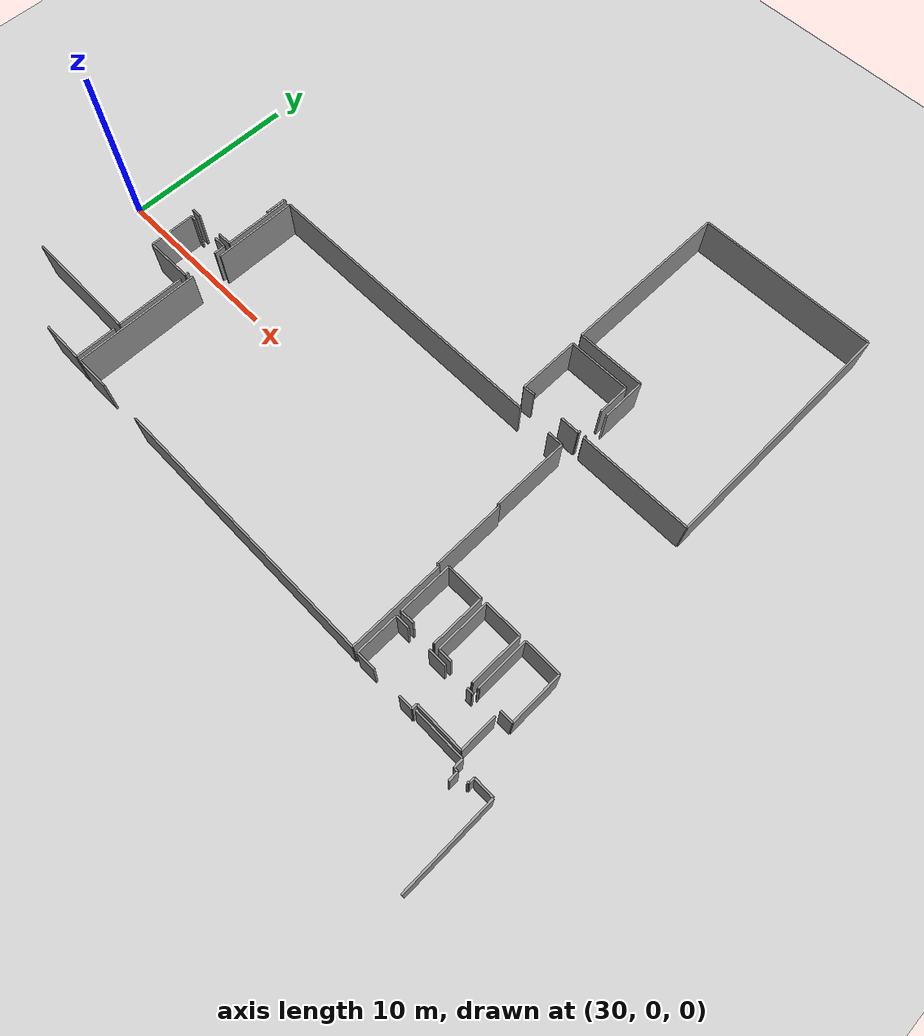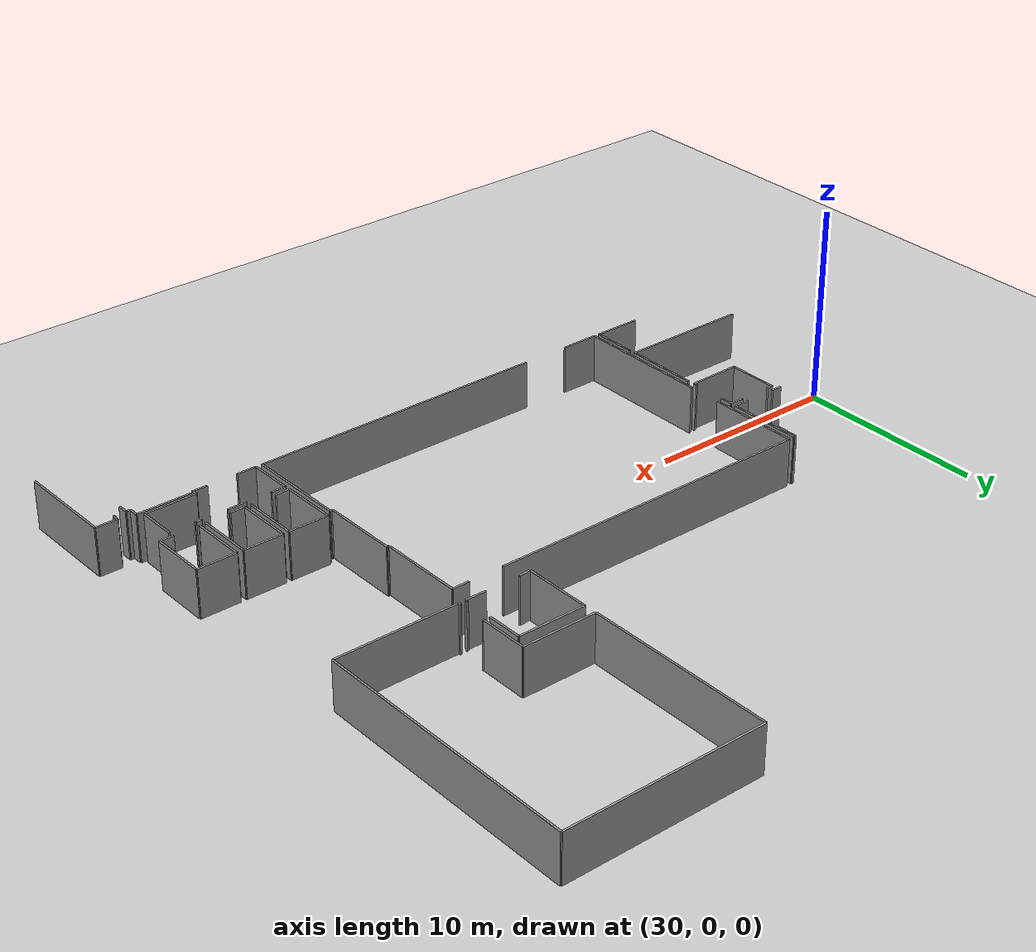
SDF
<sdf version="1.6">
 <world name="default">
  <model name="ground_plane">
   <static>1</static>
   <link name="link">
    <collision name="collision">
     <geometry><plane><normal>0 0 1</normal><size>100 100</size></plane></geometry>
     <surface><friction><ode><mu>100</mu><mu2>50</mu2></ode></friction></surface>
    </collision>
    <visual name="visual">
     <cast_shadows>0</cast_shadows>
     <geometry><plane><normal>0 0 1</normal><size>100 100</size></plane></geometry>
     <material>
      <script><uri>file://media/materials/scripts/gazebo.material</uri><name>Gazebo/Grey</name></script>
     </material>
    </visual>
   </link>
  </model>
  <model name="0510032194_A_40_1_202">
   <static>1</static>
   <link name="Wall_258">
    <collision name="Wall_258_Collision">
     <geometry><box><size>3.87219692495 0.1 2.5</size></box></geometry>
     <pose>1.93609846248 0 1.25 0 0 0</pose>
    </collision>
    <visual name="Wall_258_Visual">
     <pose>1.93609846248 0 1.25 0 0 0</pose>
     <geometry><box><size>3.87219692495 0.1 2.5</size></box></geometry>
     <material>
      <script><uri>file://media/materials/scripts/gazebo.material</uri><name>Gazebo/Grey</name></script>
      <ambient>1 1 1 1</ambient>
     </material>
    </visual>
    <pose>97.7721467538 -25.3383377471 0 0 0 -1.57079632679</pose>
   </link>
   <link name="Wall_259">
    <collision name="Wall_259_Collision">
     <geometry><box><size>6.64786836105 0.1 2.5</size></box></geometry>
     <pose>3.32393418053 0 1.25 0 0 0</pose>
    </collision>
    <visual name="Wall_259_Visual">
     <pose>3.32393418053 0 1.25 0 0 0</pose>
     <geometry><box><size>6.64786836105 0.1 2.5</size></box></geometry>
     <material>
      <script><uri>file://media/materials/scripts/gazebo.material</uri><name>Gazebo/Grey</name></script>
      <ambient>1 1 1 1</ambient>
     </material>
    </visual>
    <pose>97.7721467538 -29.2105346721 0 0 0 3.14159265359</pose>
   </link>
   <link name="Wall_265">
    <collision name="Wall_265_Collision">
     <geometry><box><size>2.30380856212 0.1 2.5</size></box></geometry>
     <pose>1.15190428106 0 1.25 0 0 0</pose>
    </collision>
    <visual name="Wall_265_Visual">
     <pose>1.15190428106 0 1.25 0 0 0</pose>
     <geometry><box><size>2.30380856212 0.1 2.5</size></box></geometry>
     <material>
      <script><uri>file://media/materials/scripts/gazebo.material</uri><name>Gazebo/Grey</name></script>
      <ambient>1 1 1 1</ambient>
     </material>
    </visual>
    <pose>97.7971688228 -29.5391239736 0 0 0 -1.57079632679</pose>
   </link>
   <link name="Wall_266">
    <collision name="Wall_266_Collision">
     <geometry><box><size>2.41355002191 0.1 2.5</size></box></geometry>
     <pose>1.20677501096 0 1.25 0 0 0</pose>
    </collision>
    <visual name="Wall_266_Visual">
     <pose>1.20677501096 0 1.25 0 0 0</pose>
     <geometry><box><size>2.41355002191 0.1 2.5</size></box></geometry>
     <material>
      <script><uri>file://media/materials/scripts/gazebo.material</uri><name>Gazebo/Grey</name></script>
      <ambient>1 1 1 1</ambient>
     </material>
    </visual>
    <pose>97.7971688228 -31.8429325357 0 0 0 3.14159265359</pose>
   </link>
   <link name="Wall_268">
    <collision name="Wall_268_Collision">
     <geometry><box><size>7.07756206299 0.1 2.5</size></box></geometry>
     <pose>3.53878103149 0 1.25 0 0 0</pose>
    </collision>
    <visual name="Wall_268_Visual">
     <pose>3.53878103149 0 1.25 0 0 0</pose>
     <geometry><box><size>7.07756206299 0.1 2.5</size></box></geometry>
     <material>
      <script><uri>file://media/materials/scripts/gazebo.material</uri><name>Gazebo/Grey</name></script>
      <ambient>1 1 1 1</ambient>
     </material>
    </visual>
    <pose>98.0842240301 -31.8544909533 0 0 0 1.57079632679</pose>
   </link>
   <link name="Wall_269">
    <collision name="Wall_269_Collision">
     <geometry><box><size>4.74720724497 0.1 2.5</size></box></geometry>
     <pose>2.37360362248 0 1.25 0 0 0</pose>
    </collision>
    <visual name="Wall_269_Visual">
     <pose>2.37360362248 0 1.25 0 0 0</pose>
     <geometry><box><size>4.74720724497 0.1 2.5</size></box></geometry>
     <material>
      <script><uri>file://media/materials/scripts/gazebo.material</uri><name>Gazebo/Grey</name></script>
      <ambient>1 1 1 1</ambient>
     </material>
    </visual>
    <pose>98.0842240301 -22.9910898572 0 0 0 1.57079632679</pose>
   </link>
   <link name="Wall_270">
    <collision name="Wall_270_Collision">
     <geometry><box><size>17.0306298067 0.1 2.5</size></box></geometry>
     <pose>8.51531490337 0 1.25 0 0 0</pose>
    </collision>
    <visual name="Wall_270_Visual">
     <pose>8.51531490337 0 1.25 0 0 0</pose>
     <geometry><box><size>17.0306298067 0.1 2.5</size></box></geometry>
     <material>
      <script><uri>file://media/materials/scripts/gazebo.material</uri><name>Gazebo/Grey</name></script>
      <ambient>1 1 1 1</ambient>
     </material>
    </visual>
    <pose>98.0842240301 -18.2438826122 0 0 0 0.0</pose>
   </link>
   <link name="Wall_271">
    <collision name="Wall_271_Collision">
     <geometry><box><size>0.876407491379 0.1 2.5</size></box></geometry>
     <pose>0.438203745689 0 1.25 0 0 0</pose>
    </collision>
    <visual name="Wall_271_Visual">
     <pose>0.438203745689 0 1.25 0 0 0</pose>
     <geometry><box><size>0.876407491379 0.1 2.5</size></box></geometry>
     <material>
      <script><uri>file://media/materials/scripts/gazebo.material</uri><name>Gazebo/Grey</name></script>
      <ambient>1 1 1 1</ambient>
     </material>
    </visual>
    <pose>116.938797544 -18.2438826122 0 0 0 0.0</pose>
   </link>
   <link name="Wall_272">
    <collision name="Wall_272_Collision">
     <geometry><box><size>4.35815852814 0.1 2.5</size></box></geometry>
     <pose>2.17907926407 0 1.25 0 0 0</pose>
    </collision>
    <visual name="Wall_272_Visual">
     <pose>2.17907926407 0 1.25 0 0 0</pose>
     <geometry><box><size>4.35815852814 0.1 2.5</size></box></geometry>
     <material>
      <script><uri>file://media/materials/scripts/gazebo.material</uri><name>Gazebo/Grey</name></script>
      <ambient>1 1 1 1</ambient>
     </material>
    </visual>
    <pose>117.815205035 -18.2438826122 0 0 0 -1.57079632679</pose>
   </link>
   <link name="Wall_273">
    <collision name="Wall_273_Collision">
     <geometry><box><size>0.111773709045 0.1 2.5</size></box></geometry>
     <pose>0.0558868545227 0 1.25 0 0 0</pose>
    </collision>
    <visual name="Wall_273_Visual">
     <pose>0.0558868545227 0 1.25 0 0 0</pose>
     <geometry><box><size>0.111773709045 0.1 2.5</size></box></geometry>
     <material>
      <script><uri>file://media/materials/scripts/gazebo.material</uri><name>Gazebo/Grey</name></script>
      <ambient>1 1 1 1</ambient>
     </material>
    </visual>
    <pose>117.815205035 -22.6020411403 0 0 0 0.0</pose>
   </link>
   <link name="Wall_274">
    <collision name="Wall_274_Collision">
     <geometry><box><size>3.9868919923 0.1 2.5</size></box></geometry>
     <pose>1.99344599615 0 1.25 0 0 0</pose>
    </collision>
    <visual name="Wall_274_Visual">
     <pose>1.99344599615 0 1.25 0 0 0</pose>
     <geometry><box><size>3.9868919923 0.1 2.5</size></box></geometry>
     <material>
      <script><uri>file://media/materials/scripts/gazebo.material</uri><name>Gazebo/Grey</name></script>
      <ambient>1 1 1 1</ambient>
     </material>
    </visual>
    <pose>117.926978744 -22.6020411403 0 0 0 -1.57079632679</pose>
   </link>
   <link name="Wall_275">
    <collision name="Wall_275_Collision">
     <geometry><box><size>0.130826045815 0.1 2.5</size></box></geometry>
     <pose>0.0654130229073 0 1.25 0 0 0</pose>
    </collision>
    <visual name="Wall_275_Visual">
     <pose>0.0654130229073 0 1.25 0 0 0</pose>
     <geometry><box><size>0.130826045815 0.1 2.5</size></box></geometry>
     <material>
      <script><uri>file://media/materials/scripts/gazebo.material</uri><name>Gazebo/Grey</name></script>
      <ambient>1 1 1 1</ambient>
     </material>
    </visual>
    <pose>117.926978744 -26.5889331326 0 0 0 0.0</pose>
   </link>
   <link name="Wall_276">
    <collision name="Wall_276_Collision">
     <geometry><box><size>5.24688653063 0.1 2.5</size></box></geometry>
     <pose>2.62344326532 0 1.25 0 0 0</pose>
    </collision>
    <visual name="Wall_276_Visual">
     <pose>2.62344326532 0 1.25 0 0 0</pose>
     <geometry><box><size>5.24688653063 0.1 2.5</size></box></geometry>
     <material>
      <script><uri>file://media/materials/scripts/gazebo.material</uri><name>Gazebo/Grey</name></script>
      <ambient>1 1 1 1</ambient>
     </material>
    </visual>
    <pose>118.05780479 -26.5889331326 0 0 0 -1.57079632679</pose>
   </link>
   <link name="Wall_277">
    <collision name="Wall_277_Collision">
     <geometry><box><size>15.5253681864 0.1 2.5</size></box></geometry>
     <pose>7.7626840932 0 1.25 0 0 0</pose>
    </collision>
    <visual name="Wall_277_Visual">
     <pose>7.7626840932 0 1.25 0 0 0</pose>
     <geometry><box><size>15.5253681864 0.1 2.5</size></box></geometry>
     <material>
      <script><uri>file://media/materials/scripts/gazebo.material</uri><name>Gazebo/Grey</name></script>
      <ambient>1 1 1 1</ambient>
     </material>
    </visual>
    <pose>118.05780479 -31.8358196633 0 0 0 3.14159265359</pose>
   </link>
   <link name="Wall_278">
    <collision name="Wall_278_Collision">
     <geometry><box><size>1.98699242061 0.1 2.5</size></box></geometry>
     <pose>0.993496210304 0 1.25 0 0 0</pose>
    </collision>
    <visual name="Wall_278_Visual">
     <pose>0.993496210304 0 1.25 0 0 0</pose>
     <geometry><box><size>1.98699242061 0.1 2.5</size></box></geometry>
     <material>
      <script><uri>file://media/materials/scripts/gazebo.material</uri><name>Gazebo/Grey</name></script>
      <ambient>1 1 1 1</ambient>
     </material>
    </visual>
    <pose>100.071128724 -31.8358196633 0 0 0 -3.13219575573</pose>
   </link>
   <link name="Wall_279">
    <collision name="Wall_279_Collision">
     <geometry><box><size>2.60331129613 0.1 2.5</size></box></geometry>
     <pose>1.30165564807 0 1.25 0 0 0</pose>
    </collision>
    <visual name="Wall_279_Visual">
     <pose>1.30165564807 0 1.25 0 0 0</pose>
     <geometry><box><size>2.60331129613 0.1 2.5</size></box></geometry>
     <material>
      <script><uri>file://media/materials/scripts/gazebo.material</uri><name>Gazebo/Grey</name></script>
      <ambient>1 1 1 1</ambient>
     </material>
    </visual>
    <pose>95.0378823963 -25.0431535428 0 0 0 1.57079632679</pose>
   </link>
   <link name="Wall_280">
    <collision name="Wall_280_Collision">
     <geometry><box><size>0.300645874216 0.1 2.5</size></box></geometry>
     <pose>0.150322937108 0 1.25 0 0 0</pose>
    </collision>
    <visual name="Wall_280_Visual">
     <pose>0.150322937108 0 1.25 0 0 0</pose>
     <geometry><box><size>0.300645874216 0.1 2.5</size></box></geometry>
     <material>
      <script><uri>file://media/materials/scripts/gazebo.material</uri><name>Gazebo/Grey</name></script>
      <ambient>1 1 1 1</ambient>
     </material>
    </visual>
    <pose>95.0378823963 -22.4398422467 0 0 0 0.0</pose>
   </link>
   <link name="Wall_281">
    <collision name="Wall_281_Collision">
     <geometry><box><size>0.739992760112 0.1 2.5</size></box></geometry>
     <pose>0.369996380056 0 1.25 0 0 0</pose>
    </collision>
    <visual name="Wall_281_Visual">
     <pose>0.369996380056 0 1.25 0 0 0</pose>
     <geometry><box><size>0.739992760112 0.1 2.5</size></box></geometry>
     <material>
      <script><uri>file://media/materials/scripts/gazebo.material</uri><name>Gazebo/Grey</name></script>
      <ambient>1 1 1 1</ambient>
     </material>
    </visual>
    <pose>97.001924286 -22.4398422467 0 0 0 0.0</pose>
   </link>
   <link name="Wall_282">
    <collision name="Wall_282_Collision">
     <geometry><box><size>0.633934752097 0.1 2.5</size></box></geometry>
     <pose>0.316967376049 0 1.25 0 0 0</pose>
    </collision>
    <visual name="Wall_282_Visual">
     <pose>0.316967376049 0 1.25 0 0 0</pose>
     <geometry><box><size>0.633934752097 0.1 2.5</size></box></geometry>
     <material>
      <script><uri>file://media/materials/scripts/gazebo.material</uri><name>Gazebo/Grey</name></script>
      <ambient>1 1 1 1</ambient>
     </material>
    </visual>
    <pose>97.7419170461 -22.4398422467 0 0 0 -1.57079632679</pose>
   </link>
   <link name="Wall_283">
    <collision name="Wall_283_Collision">
     <geometry><box><size>0.203224925537 0.1 2.5</size></box></geometry>
     <pose>0.101612462769 0 1.25 0 0 0</pose>
    </collision>
    <visual name="Wall_283_Visual">
     <pose>0.101612462769 0 1.25 0 0 0</pose>
     <geometry><box><size>0.203224925537 0.1 2.5</size></box></geometry>
     <material>
      <script><uri>file://media/materials/scripts/gazebo.material</uri><name>Gazebo/Grey</name></script>
      <ambient>1 1 1 1</ambient>
     </material>
    </visual>
    <pose>97.7419170461 -24.802332006 0 0 0 -1.57079632679</pose>
   </link>
   <link name="Wall_284">
    <collision name="Wall_284_Collision">
     <geometry><box><size>2.70429600687 0.1 2.5</size></box></geometry>
     <pose>1.35214800343 0 1.25 0 0 0</pose>
    </collision>
    <visual name="Wall_284_Visual">
     <pose>1.35214800343 0 1.25 0 0 0</pose>
     <geometry><box><size>2.70429600687 0.1 2.5</size></box></geometry>
     <material>
      <script><uri>file://media/materials/scripts/gazebo.material</uri><name>Gazebo/Grey</name></script>
      <ambient>1 1 1 1</ambient>
     </material>
    </visual>
    <pose>97.7419170461 -25.0055569316 0 0 0 -3.12768965542</pose>
   </link>
   <link name="Wall_289">
    <collision name="Wall_289_Collision">
     <geometry><box><size>1.17756142791 0.1 2.5</size></box></geometry>
     <pose>0.588780713955 0 1.25 0 0 0</pose>
    </collision>
    <visual name="Wall_289_Visual">
     <pose>0.588780713955 0 1.25 0 0 0</pose>
     <geometry><box><size>1.17756142791 0.1 2.5</size></box></geometry>
     <material>
      <script><uri>file://media/materials/scripts/gazebo.material</uri><name>Gazebo/Grey</name></script>
      <ambient>1 1 1 1</ambient>
     </material>
    </visual>
    <pose>97.6405586145 -19.4401153301 0 0 0 1.57079632679</pose>
   </link>
   <link name="Wall_290">
    <collision name="Wall_290_Collision">
     <geometry><box><size>0.124856313627 0.1 2.5</size></box></geometry>
     <pose>0.0624281568134 0 1.25 0 0 0</pose>
    </collision>
    <visual name="Wall_290_Visual">
     <pose>0.0624281568134 0 1.25 0 0 0</pose>
     <geometry><box><size>0.124856313627 0.1 2.5</size></box></geometry>
     <material>
      <script><uri>file://media/materials/scripts/gazebo.material</uri><name>Gazebo/Grey</name></script>
      <ambient>1 1 1 1</ambient>
     </material>
    </visual>
    <pose>97.6405586145 -18.2625539022 0 0 0 0.0</pose>
   </link>
   <link name="Wall_291">
    <collision name="Wall_291_Collision">
     <geometry><box><size>3.87245095611 0.1 2.5</size></box></geometry>
     <pose>1.93622547805 0 1.25 0 0 0</pose>
    </collision>
    <visual name="Wall_291_Visual">
     <pose>1.93622547805 0 1.25 0 0 0</pose>
     <geometry><box><size>3.87245095611 0.1 2.5</size></box></geometry>
     <material>
      <script><uri>file://media/materials/scripts/gazebo.material</uri><name>Gazebo/Grey</name></script>
      <ambient>1 1 1 1</ambient>
     </material>
    </visual>
    <pose>97.7654149281 -18.2625539022 0 0 0 -1.57079632679</pose>
   </link>
   <link name="Wall_292">
    <collision name="Wall_292_Collision">
     <geometry><box><size>0.818742418758 0.1 2.5</size></box></geometry>
     <pose>0.409371209379 0 1.25 0 0 0</pose>
    </collision>
    <visual name="Wall_292_Visual">
     <pose>0.409371209379 0 1.25 0 0 0</pose>
     <geometry><box><size>0.818742418758 0.1 2.5</size></box></geometry>
     <material>
      <script><uri>file://media/materials/scripts/gazebo.material</uri><name>Gazebo/Grey</name></script>
      <ambient>1 1 1 1</ambient>
     </material>
    </visual>
    <pose>97.7654149281 -22.1350048583 0 0 0 3.14159265359</pose>
   </link>
   <link name="Wall_293">
    <collision name="Wall_293_Collision">
     <geometry><box><size>0.541213379821 0.1 2.5</size></box></geometry>
     <pose>0.270606689911 0 1.25 0 0 0</pose>
    </collision>
    <visual name="Wall_293_Visual">
     <pose>0.270606689911 0 1.25 0 0 0</pose>
     <geometry><box><size>0.541213379821 0.1 2.5</size></box></geometry>
     <material>
      <script><uri>file://media/materials/scripts/gazebo.material</uri><name>Gazebo/Grey</name></script>
      <ambient>1 1 1 1</ambient>
     </material>
    </visual>
    <pose>95.3119820146 -22.1350048583 0 0 0 3.14159265359</pose>
   </link>
   <link name="Wall_298">
    <collision name="Wall_298_Collision">
     <geometry><box><size>2.48226544986 0.1 2.5</size></box></geometry>
     <pose>1.24113272493 0 1.25 0 0 0</pose>
    </collision>
    <visual name="Wall_298_Visual">
     <pose>1.24113272493 0 1.25 0 0 0</pose>
     <geometry><box><size>2.48226544986 0.1 2.5</size></box></geometry>
     <material>
      <script><uri>file://media/materials/scripts/gazebo.material</uri><name>Gazebo/Grey</name></script>
      <ambient>1 1 1 1</ambient>
     </material>
    </visual>
    <pose>118.264840183 -15.5937025676 0 0 0 1.57079632679</pose>
   </link>
   <link name="Wall_299">
    <collision name="Wall_299_Collision">
     <geometry><box><size>3.86762436413 0.1 2.5</size></box></geometry>
     <pose>1.93381218206 0 1.25 0 0 0</pose>
    </collision>
    <visual name="Wall_299_Visual">
     <pose>1.93381218206 0 1.25 0 0 0</pose>
     <geometry><box><size>3.86762436413 0.1 2.5</size></box></geometry>
     <material>
      <script><uri>file://media/materials/scripts/gazebo.material</uri><name>Gazebo/Grey</name></script>
      <ambient>1 1 1 1</ambient>
     </material>
    </visual>
    <pose>118.264840183 -13.1114371178 0 0 0 3.14159265359</pose>
   </link>
   <link name="Wall_300">
    <collision name="Wall_300_Collision">
     <geometry><box><size>9.85412260814 0.1 2.5</size></box></geometry>
     <pose>4.92706130407 0 1.25 0 0 0</pose>
    </collision>
    <visual name="Wall_300_Visual">
     <pose>4.92706130407 0 1.25 0 0 0</pose>
     <geometry><box><size>9.85412260814 0.1 2.5</size></box></geometry>
     <material>
      <script><uri>file://media/materials/scripts/gazebo.material</uri><name>Gazebo/Grey</name></script>
      <ambient>1 1 1 1</ambient>
     </material>
    </visual>
    <pose>114.397215819 -13.1114371178 0 0 0 1.57079632679</pose>
   </link>
   <link name="Wall_301">
    <collision name="Wall_301_Collision">
     <geometry><box><size>10.2603184281 0.1 2.5</size></box></geometry>
     <pose>5.13015921403 0 1.25 0 0 0</pose>
    </collision>
    <visual name="Wall_301_Visual">
     <pose>5.13015921403 0 1.25 0 0 0</pose>
     <geometry><box><size>10.2603184281 0.1 2.5</size></box></geometry>
     <material>
      <script><uri>file://media/materials/scripts/gazebo.material</uri><name>Gazebo/Grey</name></script>
      <ambient>1 1 1 1</ambient>
     </material>
    </visual>
    <pose>114.397215819 -3.25731450962 0 0 0 0.0</pose>
   </link>
   <link name="Wall_302">
    <collision name="Wall_302_Collision">
     <geometry><box><size>13.9776833629 0.1 2.5</size></box></geometry>
     <pose>6.98884168143 0 1.25 0 0 0</pose>
    </collision>
    <visual name="Wall_302_Visual">
     <pose>6.98884168143 0 1.25 0 0 0</pose>
     <geometry><box><size>13.9776833629 0.1 2.5</size></box></geometry>
     <material>
      <script><uri>file://media/materials/scripts/gazebo.material</uri><name>Gazebo/Grey</name></script>
      <ambient>1 1 1 1</ambient>
     </material>
    </visual>
    <pose>124.657534247 -3.25731450962 0 0 0 -1.57079632679</pose>
   </link>
   <link name="Wall_303">
    <collision name="Wall_303_Collision">
     <geometry><box><size>6.35839985774 0.1 2.5</size></box></geometry>
     <pose>3.17919992887 0 1.25 0 0 0</pose>
    </collision>
    <visual name="Wall_303_Visual">
     <pose>3.17919992887 0 1.25 0 0 0</pose>
     <geometry><box><size>6.35839985774 0.1 2.5</size></box></geometry>
     <material>
      <script><uri>file://media/materials/scripts/gazebo.material</uri><name>Gazebo/Grey</name></script>
      <ambient>1 1 1 1</ambient>
     </material>
    </visual>
    <pose>124.657534247 -17.2349978725 0 0 0 3.14159265359</pose>
   </link>
   <link name="Wall_304">
    <collision name="Wall_304_Collision">
     <geometry><box><size>0.144162681553 0.1 2.5</size></box></geometry>
     <pose>0.0720813407764 0 1.25 0 0 0</pose>
    </collision>
    <visual name="Wall_304_Visual">
     <pose>0.0720813407764 0 1.25 0 0 0</pose>
     <geometry><box><size>0.144162681553 0.1 2.5</size></box></geometry>
     <material>
      <script><uri>file://media/materials/scripts/gazebo.material</uri><name>Gazebo/Grey</name></script>
      <ambient>1 1 1 1</ambient>
     </material>
    </visual>
    <pose>118.299134389 -17.2349978725 0 0 0 1.57079632679</pose>
   </link>
   <link name="Wall_305">
    <collision name="Wall_305_Collision">
     <geometry><box><size>0.0737452054764 0.1 2.5</size></box></geometry>
     <pose>0.0368726027382 0 1.25 0 0 0</pose>
    </collision>
    <visual name="Wall_305_Visual">
     <pose>0.0368726027382 0 1.25 0 0 0</pose>
     <geometry><box><size>0.0737452054764 0.1 2.5</size></box></geometry>
     <material>
      <script><uri>file://media/materials/scripts/gazebo.material</uri><name>Gazebo/Grey</name></script>
      <ambient>1 1 1 1</ambient>
     </material>
    </visual>
    <pose>118.299134389 -15.6589885749 0 0 0 2.05447207407</pose>
   </link>
   <link name="Wall_306">
    <collision name="Wall_306_Collision">
     <geometry><box><size>3.49927918659 0.1 2.5</size></box></geometry>
     <pose>1.7496395933 0 1.25 0 0 0</pose>
    </collision>
    <visual name="Wall_306_Visual">
     <pose>1.7496395933 0 1.25 0 0 0</pose>
     <geometry><box><size>3.49927918659 0.1 2.5</size></box></geometry>
     <material>
      <script><uri>file://media/materials/scripts/gazebo.material</uri><name>Gazebo/Grey</name></script>
      <ambient>1 1 1 1</ambient>
     </material>
    </visual>
    <pose>114.420078623 -17.2863121662 0 0 0 1.57079632679</pose>
   </link>
   <link name="Wall_307">
    <collision name="Wall_307_Collision">
     <geometry><box><size>3.5069001213 0.1 2.5</size></box></geometry>
     <pose>1.75345006065 0 1.25 0 0 0</pose>
    </collision>
    <visual name="Wall_307_Visual">
     <pose>1.75345006065 0 1.25 0 0 0</pose>
     <geometry><box><size>3.5069001213 0.1 2.5</size></box></geometry>
     <material>
      <script><uri>file://media/materials/scripts/gazebo.material</uri><name>Gazebo/Grey</name></script>
      <ambient>1 1 1 1</ambient>
     </material>
    </visual>
    <pose>114.420078623 -13.7870329796 0 0 0 0.0</pose>
   </link>
   <link name="Wall_308">
    <collision name="Wall_308_Collision">
     <geometry><box><size>1.82483281574 0.1 2.5</size></box></geometry>
     <pose>0.912416407872 0 1.25 0 0 0</pose>
    </collision>
    <visual name="Wall_308_Visual">
     <pose>0.912416407872 0 1.25 0 0 0</pose>
     <geometry><box><size>1.82483281574 0.1 2.5</size></box></geometry>
     <material>
      <script><uri>file://media/materials/scripts/gazebo.material</uri><name>Gazebo/Grey</name></script>
      <ambient>1 1 1 1</ambient>
     </material>
    </visual>
    <pose>117.926978744 -13.7870329796 0 0 0 -1.57079632679</pose>
   </link>
   <link name="Wall_309">
    <collision name="Wall_309_Collision">
     <geometry><box><size>0.132477248335 0.1 2.5</size></box></geometry>
     <pose>0.0662386241673 0 1.25 0 0 0</pose>
    </collision>
    <visual name="Wall_309_Visual">
     <pose>0.0662386241673 0 1.25 0 0 0</pose>
     <geometry><box><size>0.132477248335 0.1 2.5</size></box></geometry>
     <material>
      <script><uri>file://media/materials/scripts/gazebo.material</uri><name>Gazebo/Grey</name></script>
      <ambient>1 1 1 1</ambient>
     </material>
    </visual>
    <pose>117.926978744 -17.0985831412 0 0 0 -1.57079632679</pose>
   </link>
   <link name="Wall_310">
    <collision name="Wall_310_Collision">
     <geometry><box><size>1.07836226113 0.1 2.5</size></box></geometry>
     <pose>0.539181130566 0 1.25 0 0 0</pose>
    </collision>
    <visual name="Wall_310_Visual">
     <pose>0.539181130566 0 1.25 0 0 0</pose>
     <geometry><box><size>1.07836226113 0.1 2.5</size></box></geometry>
     <material>
      <script><uri>file://media/materials/scripts/gazebo.material</uri><name>Gazebo/Grey</name></script>
      <ambient>1 1 1 1</ambient>
     </material>
    </visual>
    <pose>117.926978744 -17.2310603896 0 0 0 3.14159265359</pose>
   </link>
   <link name="Wall_311">
    <collision name="Wall_311_Collision">
     <geometry><box><size>0.631150173826 0.1 2.5</size></box></geometry>
     <pose>0.315575086913 0 1.25 0 0 0</pose>
    </collision>
    <visual name="Wall_311_Visual">
     <pose>0.315575086913 0 1.25 0 0 0</pose>
     <geometry><box><size>0.631150173826 0.1 2.5</size></box></geometry>
     <material>
      <script><uri>file://media/materials/scripts/gazebo.material</uri><name>Gazebo/Grey</name></script>
      <ambient>1 1 1 1</ambient>
     </material>
    </visual>
    <pose>115.048805736 -17.2310603896 0 0 0 -3.0539390432</pose>
   </link>
   <link name="Wall_312">
    <collision name="Wall_312_Collision">
     <geometry><box><size>2.31663713554 0.1 2.5</size></box></geometry>
     <pose>1.15831856777 0 1.25 0 0 0</pose>
    </collision>
    <visual name="Wall_312_Visual">
     <pose>1.15831856777 0 1.25 0 0 0</pose>
     <geometry><box><size>2.31663713554 0.1 2.5</size></box></geometry>
     <material>
      <script><uri>file://media/materials/scripts/gazebo.material</uri><name>Gazebo/Grey</name></script>
      <ambient>1 1 1 1</ambient>
     </material>
    </visual>
    <pose>118.379154203 -31.8516966106 0 0 0 1.57079632679</pose>
   </link>
   <link name="Wall_313">
    <collision name="Wall_313_Collision">
     <geometry><box><size>0.757012847626 0.1 2.5</size></box></geometry>
     <pose>0.378506423813 0 1.25 0 0 0</pose>
    </collision>
    <visual name="Wall_313_Visual">
     <pose>0.378506423813 0 1.25 0 0 0</pose>
     <geometry><box><size>0.757012847626 0.1 2.5</size></box></geometry>
     <material>
      <script><uri>file://media/materials/scripts/gazebo.material</uri><name>Gazebo/Grey</name></script>
      <ambient>1 1 1 1</ambient>
     </material>
    </visual>
    <pose>118.379154203 -29.535059475 0 0 0 0.0</pose>
   </link>
   <link name="Wall_314">
    <collision name="Wall_314_Collision">
     <geometry><box><size>0.999612602486 0.1 2.5</size></box></geometry>
     <pose>0.499806301243 0 1.25 0 0 0</pose>
    </collision>
    <visual name="Wall_314_Visual">
     <pose>0.499806301243 0 1.25 0 0 0</pose>
     <geometry><box><size>0.999612602486 0.1 2.5</size></box></geometry>
     <material>
      <script><uri>file://media/materials/scripts/gazebo.material</uri><name>Gazebo/Grey</name></script>
      <ambient>1 1 1 1</ambient>
     </material>
    </visual>
    <pose>120.449508132 -29.535059475 0 0 0 0.0</pose>
   </link>
   <link name="Wall_315">
    <collision name="Wall_315_Collision">
     <geometry><box><size>0.35564361969 0.1 2.5</size></box></geometry>
     <pose>0.177821809845 0 1.25 0 0 0</pose>
    </collision>
    <visual name="Wall_315_Visual">
     <pose>0.177821809845 0 1.25 0 0 0</pose>
     <geometry><box><size>0.35564361969 0.1 2.5</size></box></geometry>
     <material>
      <script><uri>file://media/materials/scripts/gazebo.material</uri><name>Gazebo/Grey</name></script>
      <ambient>1 1 1 1</ambient>
     </material>
    </visual>
    <pose>122.784054464 -29.535059475 0 0 0 0.0</pose>
   </link>
   <link name="Wall_316">
    <collision name="Wall_316_Collision">
     <geometry><box><size>0.0635077892304 0.1 2.5</size></box></geometry>
     <pose>0.0317538946152 0 1.25 0 0 0</pose>
    </collision>
    <visual name="Wall_316_Visual">
     <pose>0.0317538946152 0 1.25 0 0 0</pose>
     <geometry><box><size>0.0635077892304 0.1 2.5</size></box></geometry>
     <material>
      <script><uri>file://media/materials/scripts/gazebo.material</uri><name>Gazebo/Grey</name></script>
      <ambient>1 1 1 1</ambient>
     </material>
    </visual>
    <pose>123.139698084 -29.535059475 0 0 0 3.14159265359</pose>
   </link>
   <link name="Wall_317">
    <collision name="Wall_317_Collision">
     <geometry><box><size>2.00697315526 0.1 2.5</size></box></geometry>
     <pose>1.00348657763 0 1.25 0 0 0</pose>
    </collision>
    <visual name="Wall_317_Visual">
     <pose>1.00348657763 0 1.25 0 0 0</pose>
     <geometry><box><size>2.00697315526 0.1 2.5</size></box></geometry>
     <material>
      <script><uri>file://media/materials/scripts/gazebo.material</uri><name>Gazebo/Grey</name></script>
      <ambient>1 1 1 1</ambient>
     </material>
    </visual>
    <pose>124.446688386 -29.535059475 0 0 0 -1.57079632679</pose>
   </link>
   <link name="Wall_318">
    <collision name="Wall_318_Collision">
     <geometry><box><size>2.67494808238 0.1 2.5</size></box></geometry>
     <pose>1.33747404119 0 1.25 0 0 0</pose>
    </collision>
    <visual name="Wall_318_Visual">
     <pose>1.33747404119 0 1.25 0 0 0</pose>
     <geometry><box><size>2.67494808238 0.1 2.5</size></box></geometry>
     <material>
      <script><uri>file://media/materials/scripts/gazebo.material</uri><name>Gazebo/Grey</name></script>
      <ambient>1 1 1 1</ambient>
     </material>
    </visual>
    <pose>124.446688386 -31.5420326303 0 0 0 3.14159265359</pose>
   </link>
   <link name="Wall_319">
    <collision name="Wall_319_Collision">
     <geometry><box><size>0.29048462794 0.1 2.5</size></box></geometry>
     <pose>0.14524231397 0 1.25 0 0 0</pose>
    </collision>
    <visual name="Wall_319_Visual">
     <pose>0.14524231397 0 1.25 0 0 0</pose>
     <geometry><box><size>0.29048462794 0.1 2.5</size></box></geometry>
     <material>
      <script><uri>file://media/materials/scripts/gazebo.material</uri><name>Gazebo/Grey</name></script>
      <ambient>1 1 1 1</ambient>
     </material>
    </visual>
    <pose>121.771740304 -31.5420326303 0 0 0 -1.57079632679</pose>
   </link>
   <link name="Wall_320">
    <collision name="Wall_320_Collision">
     <geometry><box><size>0.770984561256 0.1 2.5</size></box></geometry>
     <pose>0.385492280628 0 1.25 0 0 0</pose>
    </collision>
    <visual name="Wall_320_Visual">
     <pose>0.385492280628 0 1.25 0 0 0</pose>
     <geometry><box><size>0.770984561256 0.1 2.5</size></box></geometry>
     <material>
      <script><uri>file://media/materials/scripts/gazebo.material</uri><name>Gazebo/Grey</name></script>
      <ambient>1 1 1 1</ambient>
     </material>
    </visual>
    <pose>121.771740304 -31.8325172582 0 0 0 3.14159265359</pose>
   </link>
   <link name="Wall_321">
    <collision name="Wall_321_Collision">
     <geometry><box><size>1.04424420081 0.1 2.5</size></box></geometry>
     <pose>0.522122100403 0 1.25 0 0 0</pose>
    </collision>
    <visual name="Wall_321_Visual">
     <pose>0.522122100403 0 1.25 0 0 0</pose>
     <geometry><box><size>1.04424420081 0.1 2.5</size></box></geometry>
     <material>
      <script><uri>file://media/materials/scripts/gazebo.material</uri><name>Gazebo/Grey</name></script>
      <ambient>1 1 1 1</ambient>
     </material>
    </visual>
    <pose>119.423222258 -31.8325172582 0 0 0 -3.12322488979</pose>
   </link>
   <link name="Wall_322">
    <collision name="Wall_322_Collision">
     <geometry><box><size>2.94803157607 0.1 2.5</size></box></geometry>
     <pose>1.47401578804 0 1.25 0 0 0</pose>
    </collision>
    <visual name="Wall_322_Visual">
     <pose>1.47401578804 0 1.25 0 0 0</pose>
     <geometry><box><size>2.94803157607 0.1 2.5</size></box></geometry>
     <material>
      <script><uri>file://media/materials/scripts/gazebo.material</uri><name>Gazebo/Grey</name></script>
      <ambient>1 1 1 1</ambient>
     </material>
    </visual>
    <pose>118.366452645 -29.2552441557 0 0 0 1.57079632679</pose>
   </link>
   <link name="Wall_323">
    <collision name="Wall_323_Collision">
     <geometry><box><size>2.0627329942 0.1 2.5</size></box></geometry>
     <pose>1.0313664971 0 1.25 0 0 0</pose>
    </collision>
    <visual name="Wall_323_Visual">
     <pose>1.0313664971 0 1.25 0 0 0</pose>
     <geometry><box><size>2.0627329942 0.1 2.5</size></box></geometry>
     <material>
      <script><uri>file://media/materials/scripts/gazebo.material</uri><name>Gazebo/Grey</name></script>
      <ambient>1 1 1 1</ambient>
     </material>
    </visual>
    <pose>118.366452645 -26.3072125796 0 0 0 0.0</pose>
   </link>
   <link name="Wall_324">
    <collision name="Wall_324_Collision">
     <geometry><box><size>2.90459224824 0.1 2.5</size></box></geometry>
     <pose>1.45229612412 0 1.25 0 0 0</pose>
    </collision>
    <visual name="Wall_324_Visual">
     <pose>1.45229612412 0 1.25 0 0 0</pose>
     <geometry><box><size>2.90459224824 0.1 2.5</size></box></geometry>
     <material>
      <script><uri>file://media/materials/scripts/gazebo.material</uri><name>Gazebo/Grey</name></script>
      <ambient>1 1 1 1</ambient>
     </material>
    </visual>
    <pose>120.42918564 -26.3072125796 0 0 0 -1.57079632679</pose>
   </link>
   <link name="Wall_325">
    <collision name="Wall_325_Collision">
     <geometry><box><size>0.0533465429535 0.1 2.5</size></box></geometry>
     <pose>0.0266732714767 0 1.25 0 0 0</pose>
    </collision>
    <visual name="Wall_325_Visual">
     <pose>0.0266732714767 0 1.25 0 0 0</pose>
     <geometry><box><size>0.0533465429535 0.1 2.5</size></box></geometry>
     <material>
      <script><uri>file://media/materials/scripts/gazebo.material</uri><name>Gazebo/Grey</name></script>
      <ambient>1 1 1 1</ambient>
     </material>
    </visual>
    <pose>120.42918564 -29.2118048279 0 0 0 3.14159265359</pose>
   </link>
   <link name="Wall_326">
    <collision name="Wall_326_Collision">
     <geometry><box><size>0.762062393652 0.1 2.5</size></box></geometry>
     <pose>0.381031196826 0 1.25 0 0 0</pose>
    </collision>
    <visual name="Wall_326_Visual">
     <pose>0.381031196826 0 1.25 0 0 0</pose>
     <geometry><box><size>0.762062393652 0.1 2.5</size></box></geometry>
     <material>
      <script><uri>file://media/materials/scripts/gazebo.material</uri><name>Gazebo/Grey</name></script>
      <ambient>1 1 1 1</ambient>
     </material>
    </visual>
    <pose>119.12727596 -29.2118048279 0 0 0 -3.08455941461</pose>
   </link>
   <link name="Wall_327">
    <collision name="Wall_327_Collision">
     <geometry><box><size>2.93507598707 0.1 2.5</size></box></geometry>
     <pose>1.46753799353 0 1.25 0 0 0</pose>
    </collision>
    <visual name="Wall_327_Visual">
     <pose>1.46753799353 0 1.25 0 0 0</pose>
     <geometry><box><size>2.93507598707 0.1 2.5</size></box></geometry>
     <material>
      <script><uri>file://media/materials/scripts/gazebo.material</uri><name>Gazebo/Grey</name></script>
      <ambient>1 1 1 1</ambient>
     </material>
    </visual>
    <pose>120.742914118 -29.2307301491 0 0 0 1.57079632679</pose>
   </link>
   <link name="Wall_328">
    <collision name="Wall_328_Collision">
     <geometry><box><size>2.04876128057 0.1 2.5</size></box></geometry>
     <pose>1.02438064029 0 1.25 0 0 0</pose>
    </collision>
    <visual name="Wall_328_Visual">
     <pose>1.02438064029 0 1.25 0 0 0</pose>
     <geometry><box><size>2.04876128057 0.1 2.5</size></box></geometry>
     <material>
      <script><uri>file://media/materials/scripts/gazebo.material</uri><name>Gazebo/Grey</name></script>
      <ambient>1 1 1 1</ambient>
     </material>
    </visual>
    <pose>120.742914118 -26.295654162 0 0 0 0.0</pose>
   </link>
   <link name="Wall_329">
    <collision name="Wall_329_Collision">
     <geometry><box><size>2.93380583129 0.1 2.5</size></box></geometry>
     <pose>1.46690291564 0 1.25 0 0 0</pose>
    </collision>
    <visual name="Wall_329_Visual">
     <pose>1.46690291564 0 1.25 0 0 0</pose>
     <geometry><box><size>2.93380583129 0.1 2.5</size></box></geometry>
     <material>
      <script><uri>file://media/materials/scripts/gazebo.material</uri><name>Gazebo/Grey</name></script>
      <ambient>1 1 1 1</ambient>
     </material>
    </visual>
    <pose>122.791675399 -26.295654162 0 0 0 -1.57079632679</pose>
   </link>
   <link name="Wall_330">
    <collision name="Wall_330_Collision">
     <geometry><box><size>0.0495360755997 0.1 2.5</size></box></geometry>
     <pose>0.0247680377998 0 1.25 0 0 0</pose>
    </collision>
    <visual name="Wall_330_Visual">
     <pose>0.0247680377998 0 1.25 0 0 0</pose>
     <geometry><box><size>0.0495360755997 0.1 2.5</size></box></geometry>
     <material>
      <script><uri>file://media/materials/scripts/gazebo.material</uri><name>Gazebo/Grey</name></script>
      <ambient>1 1 1 1</ambient>
     </material>
    </visual>
    <pose>122.791675399 -29.2294599933 0 0 0 3.14159265359</pose>
   </link>
   <link name="Wall_331">
    <collision name="Wall_331_Collision">
     <geometry><box><size>0.76336468325 0.1 2.5</size></box></geometry>
     <pose>0.381682341625 0 1.25 0 0 0</pose>
    </collision>
    <visual name="Wall_331_Visual">
     <pose>0.381682341625 0 1.25 0 0 0</pose>
     <geometry><box><size>0.76336468325 0.1 2.5</size></box></geometry>
     <material>
      <script><uri>file://media/materials/scripts/gazebo.material</uri><name>Gazebo/Grey</name></script>
      <ambient>1 1 1 1</ambient>
     </material>
    </visual>
    <pose>121.506277745 -29.2294599933 0 0 0 -3.13992876161</pose>
   </link>
   <link name="Wall_332">
    <collision name="Wall_332_Collision">
     <geometry><box><size>2.9378703298 0.1 2.5</size></box></geometry>
     <pose>1.4689351649 0 1.25 0 0 0</pose>
    </collision>
    <visual name="Wall_332_Visual">
     <pose>1.4689351649 0 1.25 0 0 0</pose>
     <geometry><box><size>2.9378703298 0.1 2.5</size></box></geometry>
     <material>
      <script><uri>file://media/materials/scripts/gazebo.material</uri><name>Gazebo/Grey</name></script>
      <ambient>1 1 1 1</ambient>
     </material>
    </visual>
    <pose>123.121915903 -29.2280628219 0 0 0 1.57079632679</pose>
   </link>
   <link name="Wall_333">
    <collision name="Wall_333_Collision">
     <geometry><box><size>2.03478956694 0.1 2.5</size></box></geometry>
     <pose>1.01739478347 0 1.25 0 0 0</pose>
    </collision>
    <visual name="Wall_333_Visual">
     <pose>1.01739478347 0 1.25 0 0 0</pose>
     <geometry><box><size>2.03478956694 0.1 2.5</size></box></geometry>
     <material>
      <script><uri>file://media/materials/scripts/gazebo.material</uri><name>Gazebo/Grey</name></script>
      <ambient>1 1 1 1</ambient>
     </material>
    </visual>
    <pose>123.121915903 -26.2901924921 0 0 0 0.0</pose>
   </link>
   <link name="Wall_334">
    <collision name="Wall_334_Collision">
     <geometry><box><size>2.913102292 0.1 2.5</size></box></geometry>
     <pose>1.456551146 0 1.25 0 0 0</pose>
    </collision>
    <visual name="Wall_334_Visual">
     <pose>1.456551146 0 1.25 0 0 0</pose>
     <geometry><box><size>2.913102292 0.1 2.5</size></box></geometry>
     <material>
      <script><uri>file://media/materials/scripts/gazebo.material</uri><name>Gazebo/Grey</name></script>
      <ambient>1 1 1 1</ambient>
     </material>
    </visual>
    <pose>125.15670547 -26.2901924921 0 0 0 -1.57079632679</pose>
   </link>
   <link name="Wall_335">
    <collision name="Wall_335_Collision">
     <geometry><box><size>0.715097706734 0.1 2.5</size></box></geometry>
     <pose>0.357548853367 0 1.25 0 0 0</pose>
    </collision>
    <visual name="Wall_335_Visual">
     <pose>0.357548853367 0 1.25 0 0 0</pose>
     <geometry><box><size>0.715097706734 0.1 2.5</size></box></geometry>
     <material>
      <script><uri>file://media/materials/scripts/gazebo.material</uri><name>Gazebo/Grey</name></script>
      <ambient>1 1 1 1</ambient>
     </material>
    </visual>
    <pose>125.15670547 -29.2032947841 0 0 0 3.14159265359</pose>
   </link>
   <link name="Wall_336">
    <collision name="Wall_336_Collision">
     <geometry><box><size>0.0813420497655 0.1 2.5</size></box></geometry>
     <pose>0.0406710248827 0 1.25 0 0 0</pose>
    </collision>
    <visual name="Wall_336_Visual">
     <pose>0.0406710248827 0 1.25 0 0 0</pose>
     <geometry><box><size>0.0813420497655 0.1 2.5</size></box></geometry>
     <material>
      <script><uri>file://media/materials/scripts/gazebo.material</uri><name>Gazebo/Grey</name></script>
      <ambient>1 1 1 1</ambient>
     </material>
    </visual>
    <pose>123.199395406 -29.2032947841 0 0 0 -2.83218715104</pose>
   </link>
   <link name="Wall_408">
    <collision name="Wall_408_Collision">
     <geometry><box><size>2.79561288192 0.1 2.5</size></box></geometry>
     <pose>1.39780644096 0 1.25 0 0 0</pose>
    </collision>
    <visual name="Wall_408_Visual">
     <pose>1.39780644096 0 1.25 0 0 0</pose>
     <geometry><box><size>2.79561288192 0.1 2.5</size></box></geometry>
     <material>
      <script><uri>file://media/materials/scripts/gazebo.material</uri><name>Gazebo/Grey</name></script>
      <ambient>1 1 1 1</ambient>
     </material>
    </visual>
    <pose>121.929239621 -31.7315398734 0 0 0 0.0</pose>
   </link>
   <link name="Wall_409">
    <collision name="Wall_409_Collision">
     <geometry><box><size>0.509459485206 0.1 2.5</size></box></geometry>
     <pose>0.254729742603 0 1.25 0 0 0</pose>
    </collision>
    <visual name="Wall_409_Visual">
     <pose>0.254729742603 0 1.25 0 0 0</pose>
     <geometry><box><size>0.509459485206 0.1 2.5</size></box></geometry>
     <material>
      <script><uri>file://media/materials/scripts/gazebo.material</uri><name>Gazebo/Grey</name></script>
      <ambient>1 1 1 1</ambient>
     </material>
    </visual>
    <pose>124.724852503 -31.7315398734 0 0 0 -1.57079632679</pose>
   </link>
   <link name="Wall_410">
    <collision name="Wall_410_Collision">
     <geometry><box><size>0.221007106522 0.1 2.5</size></box></geometry>
     <pose>0.110503553261 0 1.25 0 0 0</pose>
    </collision>
    <visual name="Wall_410_Visual">
     <pose>0.110503553261 0 1.25 0 0 0</pose>
     <geometry><box><size>0.221007106522 0.1 2.5</size></box></geometry>
     <material>
      <script><uri>file://media/materials/scripts/gazebo.material</uri><name>Gazebo/Grey</name></script>
      <ambient>1 1 1 1</ambient>
     </material>
    </visual>
    <pose>124.724852503 -32.2409993586 0 0 0 0.0</pose>
   </link>
   <link name="Wall_411">
    <collision name="Wall_411_Collision">
     <geometry><box><size>0.530163024495 0.1 2.5</size></box></geometry>
     <pose>0.265081512247 0 1.25 0 0 0</pose>
    </collision>
    <visual name="Wall_411_Visual">
     <pose>0.265081512247 0 1.25 0 0 0</pose>
     <geometry><box><size>0.530163024495 0.1 2.5</size></box></geometry>
     <material>
      <script><uri>file://media/materials/scripts/gazebo.material</uri><name>Gazebo/Grey</name></script>
      <ambient>1 1 1 1</ambient>
     </material>
    </visual>
    <pose>124.94585961 -32.2409993586 0 0 0 -1.57079632679</pose>
   </link>
   <link name="Wall_414">
    <collision name="Wall_414_Collision">
     <geometry><box><size>0.0889109049225 0.1 2.5</size></box></geometry>
     <pose>0.0444554524612 0 1.25 0 0 0</pose>
    </collision>
    <visual name="Wall_414_Visual">
     <pose>0.0444554524612 0 1.25 0 0 0</pose>
     <geometry><box><size>0.0889109049225 0.1 2.5</size></box></geometry>
     <material>
      <script><uri>file://media/materials/scripts/gazebo.material</uri><name>Gazebo/Grey</name></script>
      <ambient>1 1 1 1</ambient>
     </material>
    </visual>
    <pose>125.49710722 -32.2299490032 0 0 0 0.0</pose>
   </link>
   <link name="Wall_415">
    <collision name="Wall_415_Collision">
     <geometry><box><size>0.309282933552 0.1 2.5</size></box></geometry>
     <pose>0.154641466776 0 1.25 0 0 0</pose>
    </collision>
    <visual name="Wall_415_Visual">
     <pose>0.154641466776 0 1.25 0 0 0</pose>
     <geometry><box><size>0.309282933552 0.1 2.5</size></box></geometry>
     <material>
      <script><uri>file://media/materials/scripts/gazebo.material</uri><name>Gazebo/Grey</name></script>
      <ambient>1 1 1 1</ambient>
     </material>
    </visual>
    <pose>125.586018125 -32.2299490032 0 0 0 1.57079632679</pose>
   </link>
   <link name="Wall_416">
    <collision name="Wall_416_Collision">
     <geometry><box><size>1.11519677888 0.1 2.5</size></box></geometry>
     <pose>0.557598389442 0 1.25 0 0 0</pose>
    </collision>
    <visual name="Wall_416_Visual">
     <pose>0.557598389442 0 1.25 0 0 0</pose>
     <geometry><box><size>1.11519677888 0.1 2.5</size></box></geometry>
     <material>
      <script><uri>file://media/materials/scripts/gazebo.material</uri><name>Gazebo/Grey</name></script>
      <ambient>1 1 1 1</ambient>
     </material>
    </visual>
    <pose>125.586018125 -31.9206660697 0 0 0 0.0</pose>
   </link>
   <link name="Wall_417">
    <collision name="Wall_417_Collision">
     <geometry><box><size>5.17575780669 0.1 2.5</size></box></geometry>
     <pose>2.58787890335 0 1.25 0 0 0</pose>
    </collision>
    <visual name="Wall_417_Visual">
     <pose>2.58787890335 0 1.25 0 0 0</pose>
     <geometry><box><size>5.17575780669 0.1 2.5</size></box></geometry>
     <material>
      <script><uri>file://media/materials/scripts/gazebo.material</uri><name>Gazebo/Grey</name></script>
      <ambient>1 1 1 1</ambient>
     </material>
    </visual>
    <pose>126.701214904 -31.9206660697 0 0 0 -1.57079632679</pose>
   </link>
   <pose>-60.9 23.465744216 0 0 0 0</pose>
  </model>
 </world>
</sdf>
